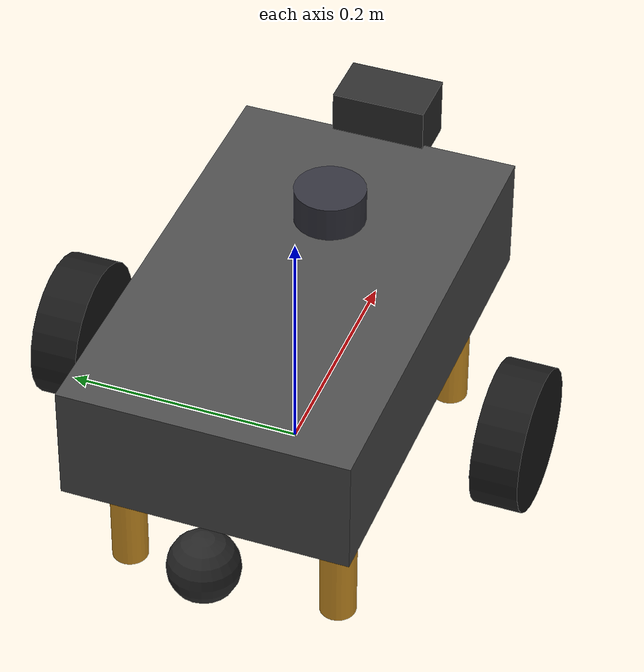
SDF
<?xml version="1.0"?>
<sdf version="1.9">
  <model name="spot_micro">
    <static>false</static>

    <link name="base_link">
      <pose>0 0 0.12 0 0 0</pose>
      <inertial>
        <mass>8.0</mass>
        <inertia>
          <ixx>0.12</ixx>
          <iyy>0.16</iyy>
          <izz>0.22</izz>
          <ixy>0.0</ixy>
          <ixz>0.0</ixz>
          <iyz>0.0</iyz>
        </inertia>
      </inertial>

      <visual name="body_visual">
        <geometry>
          <box>
            <size>0.40 0.24 0.10</size>
          </box>
        </geometry>
        <material>
          <ambient>0.20 0.20 0.20 1</ambient>
          <diffuse>0.30 0.30 0.30 1</diffuse>
          <specular>0.40 0.40 0.40 1</specular>
        </material>
      </visual>

      <!-- Visual-only legs for Spot-like look -->
      <visual name="front_left_leg_visual">
        <pose>0.14 0.09 -0.08 0 0 0</pose>
        <geometry>
          <cylinder>
            <radius>0.015</radius>
            <length>0.16</length>
          </cylinder>
        </geometry>
        <material>
          <ambient>0.65 0.45 0.10 1</ambient>
          <diffuse>0.85 0.60 0.15 1</diffuse>
        </material>
      </visual>
      <visual name="front_right_leg_visual">
        <pose>0.14 -0.09 -0.08 0 0 0</pose>
        <geometry>
          <cylinder>
            <radius>0.015</radius>
            <length>0.16</length>
          </cylinder>
        </geometry>
        <material>
          <ambient>0.65 0.45 0.10 1</ambient>
          <diffuse>0.85 0.60 0.15 1</diffuse>
        </material>
      </visual>
      <visual name="rear_left_leg_visual">
        <pose>-0.14 0.09 -0.08 0 0 0</pose>
        <geometry>
          <cylinder>
            <radius>0.015</radius>
            <length>0.16</length>
          </cylinder>
        </geometry>
        <material>
          <ambient>0.65 0.45 0.10 1</ambient>
          <diffuse>0.85 0.60 0.15 1</diffuse>
        </material>
      </visual>
      <visual name="rear_right_leg_visual">
        <pose>-0.14 -0.09 -0.08 0 0 0</pose>
        <geometry>
          <cylinder>
            <radius>0.015</radius>
            <length>0.16</length>
          </cylinder>
        </geometry>
        <material>
          <ambient>0.65 0.45 0.10 1</ambient>
          <diffuse>0.85 0.60 0.15 1</diffuse>
        </material>
      </visual>

      <!-- Lower profile collision for stability -->
      <collision name="body_collision">
        <pose>0 0 -0.01 0 0 0</pose>
        <geometry>
          <box>
            <size>0.30 0.22 0.06</size>
          </box>
        </geometry>
      </collision>
    </link>

    <link name="left_wheel">
      <pose>0 0.19 0.06 1.5708 0 0</pose>
      <inertial>
        <mass>0.8</mass>
        <inertia>
          <ixx>0.002</ixx>
          <iyy>0.001</iyy>
          <izz>0.002</izz>
          <ixy>0.0</ixy>
          <ixz>0.0</ixz>
          <iyz>0.0</iyz>
        </inertia>
      </inertial>
      <visual name="left_wheel_visual">
        <geometry>
          <cylinder>
            <radius>0.06</radius>
            <length>0.04</length>
          </cylinder>
        </geometry>
        <material>
          <ambient>0.05 0.05 0.05 1</ambient>
          <diffuse>0.10 0.10 0.10 1</diffuse>
        </material>
      </visual>
      <collision name="left_wheel_collision">
        <geometry>
          <cylinder>
            <radius>0.06</radius>
            <length>0.04</length>
          </cylinder>
        </geometry>
        <surface>
          <friction>
            <ode>
              <mu>3.0</mu>
              <mu2>3.0</mu2>
            </ode>
          </friction>
        </surface>
      </collision>
    </link>

    <link name="right_wheel">
      <pose>0 -0.19 0.06 1.5708 0 0</pose>
      <inertial>
        <mass>0.8</mass>
        <inertia>
          <ixx>0.002</ixx>
          <iyy>0.001</iyy>
          <izz>0.002</izz>
          <ixy>0.0</ixy>
          <ixz>0.0</ixz>
          <iyz>0.0</iyz>
        </inertia>
      </inertial>
      <visual name="right_wheel_visual">
        <geometry>
          <cylinder>
            <radius>0.06</radius>
            <length>0.04</length>
          </cylinder>
        </geometry>
        <material>
          <ambient>0.05 0.05 0.05 1</ambient>
          <diffuse>0.10 0.10 0.10 1</diffuse>
        </material>
      </visual>
      <collision name="right_wheel_collision">
        <geometry>
          <cylinder>
            <radius>0.06</radius>
            <length>0.04</length>
          </cylinder>
        </geometry>
        <surface>
          <friction>
            <ode>
              <mu>3.0</mu>
              <mu2>3.0</mu2>
            </ode>
          </friction>
        </surface>
      </collision>
    </link>

    <link name="front_caster_link">
      <pose>0.20 0 0.03 0 0 0</pose>
      <inertial>
        <mass>0.2</mass>
        <inertia>
          <ixx>0.0001</ixx>
          <iyy>0.0001</iyy>
          <izz>0.0001</izz>
          <ixy>0.0</ixy>
          <ixz>0.0</ixz>
          <iyz>0.0</iyz>
        </inertia>
      </inertial>
      <visual name="front_caster_visual">
        <geometry>
          <sphere>
            <radius>0.03</radius>
          </sphere>
        </geometry>
        <material>
          <ambient>0.08 0.08 0.08 1</ambient>
          <diffuse>0.15 0.15 0.15 1</diffuse>
        </material>
      </visual>
      <collision name="front_caster_collision">
        <geometry>
          <sphere>
            <radius>0.03</radius>
          </sphere>
        </geometry>
        <surface>
          <friction>
            <ode>
              <mu>0.02</mu>
              <mu2>0.02</mu2>
            </ode>
          </friction>
        </surface>
      </collision>
    </link>

    <link name="rear_caster_link">
      <pose>-0.20 0 0.03 0 0 0</pose>
      <inertial>
        <mass>0.2</mass>
        <inertia>
          <ixx>0.0001</ixx>
          <iyy>0.0001</iyy>
          <izz>0.0001</izz>
          <ixy>0.0</ixy>
          <ixz>0.0</ixz>
          <iyz>0.0</iyz>
        </inertia>
      </inertial>
      <visual name="rear_caster_visual">
        <geometry>
          <sphere>
            <radius>0.03</radius>
          </sphere>
        </geometry>
        <material>
          <ambient>0.08 0.08 0.08 1</ambient>
          <diffuse>0.15 0.15 0.15 1</diffuse>
        </material>
      </visual>
      <collision name="rear_caster_collision">
        <geometry>
          <sphere>
            <radius>0.03</radius>
          </sphere>
        </geometry>
        <surface>
          <friction>
            <ode>
              <mu>0.02</mu>
              <mu2>0.02</mu2>
            </ode>
          </friction>
        </surface>
      </collision>
    </link>

    <joint name="left_wheel_joint" type="revolute">
      <parent>base_link</parent>
      <child>left_wheel</child>
      <axis>
        <xyz>0 1 0</xyz>
        <dynamics>
          <damping>0.2</damping>
          <friction>0.05</friction>
        </dynamics>
        <limit>
          <lower>-1e16</lower>
          <upper>1e16</upper>
        </limit>
      </axis>
    </joint>

    <joint name="right_wheel_joint" type="revolute">
      <parent>base_link</parent>
      <child>right_wheel</child>
      <axis>
        <xyz>0 1 0</xyz>
        <dynamics>
          <damping>0.2</damping>
          <friction>0.05</friction>
        </dynamics>
        <limit>
          <lower>-1e16</lower>
          <upper>1e16</upper>
        </limit>
      </axis>
    </joint>

    <joint name="front_caster_joint" type="fixed">
      <parent>base_link</parent>
      <child>front_caster_link</child>
    </joint>

    <joint name="rear_caster_joint" type="fixed">
      <parent>base_link</parent>
      <child>rear_caster_link</child>
    </joint>

    <link name="camera_link">
      <pose>0.22 0 0.18 0 0 0</pose>
      <inertial>
        <mass>0.2</mass>
        <inertia>
          <ixx>0.001</ixx>
          <iyy>0.001</iyy>
          <izz>0.001</izz>
          <ixy>0.0</ixy>
          <ixz>0.0</ixz>
          <iyz>0.0</iyz>
        </inertia>
      </inertial>
      <visual name="camera_visual">
        <geometry>
          <box>
            <size>0.05 0.08 0.05</size>
          </box>
        </geometry>
        <material>
          <ambient>0.12 0.12 0.12 1</ambient>
          <diffuse>0.18 0.18 0.18 1</diffuse>
        </material>
      </visual>

      <sensor name="camera" type="camera">
        <pose>0.03 0 0 0 0 0</pose>
        <always_on>true</always_on>
        <update_rate>30</update_rate>
        <visualize>false</visualize>
        <topic>/spot/camera/image_raw</topic>
        <camera>
          <horizontal_fov>1.047</horizontal_fov>
          <image>
            <width>640</width>
            <height>480</height>
            <format>R8G8B8</format>
          </image>
          <clip>
            <near>0.1</near>
            <far>100.0</far>
          </clip>
        </camera>
      </sensor>
    </link>

    <joint name="camera_joint" type="fixed">
      <parent>base_link</parent>
      <child>camera_link</child>
    </joint>

    <link name="lidar_link">
      <pose>0.08 0 0.18 0 0 0</pose>
      <inertial>
        <mass>0.2</mass>
        <inertia>
          <ixx>0.001</ixx>
          <iyy>0.001</iyy>
          <izz>0.001</izz>
          <ixy>0.0</ixy>
          <ixz>0.0</ixz>
          <iyz>0.0</iyz>
        </inertia>
      </inertial>
      <visual name="lidar_visual">
        <geometry>
          <cylinder>
            <radius>0.03</radius>
            <length>0.04</length>
          </cylinder>
        </geometry>
        <material>
          <ambient>0.15 0.15 0.18 1</ambient>
          <diffuse>0.20 0.20 0.24 1</diffuse>
        </material>
      </visual>

      <sensor name="lidar" type="lidar">
        <always_on>true</always_on>
        <update_rate>15</update_rate>
        <visualize>false</visualize>
        <topic>/scan</topic>
        <lidar>
          <scan>
            <horizontal>
              <samples>720</samples>
              <resolution>1</resolution>
              <min_angle>-1.5708</min_angle>
              <max_angle>1.5708</max_angle>
            </horizontal>
          </scan>
          <range>
            <min>0.12</min>
            <max>15.0</max>
            <resolution>0.01</resolution>
          </range>
        </lidar>
      </sensor>
    </link>

    <joint name="lidar_joint" type="fixed">
      <parent>base_link</parent>
      <child>lidar_link</child>
    </joint>

    <plugin filename="gz-sim-diff-drive-system" name="gz::sim::systems::DiffDrive">
      <left_joint>left_wheel_joint</left_joint>
      <right_joint>right_wheel_joint</right_joint>
      <wheel_separation>0.38</wheel_separation>
      <wheel_radius>0.06</wheel_radius>
      <topic>/cmd_vel</topic>
      <odom_topic>/odom</odom_topic>
      <tf_topic>/tf</tf_topic>
      <frame_id>spot_micro/odom</frame_id>
      <child_frame_id>spot_micro/base_link</child_frame_id>
      <odom_publish_frequency>30</odom_publish_frequency>
      <max_linear_velocity>0.35</max_linear_velocity>
      <max_angular_velocity>0.7</max_angular_velocity>
    </plugin>

    <plugin filename="gz-sim-joint-state-publisher-system" name="gz::sim::systems::JointStatePublisher"/>

    <self_collide>false</self_collide>
  </model>
</sdf>
